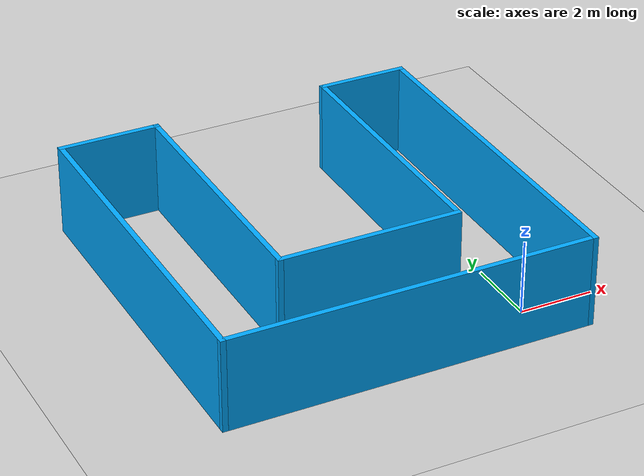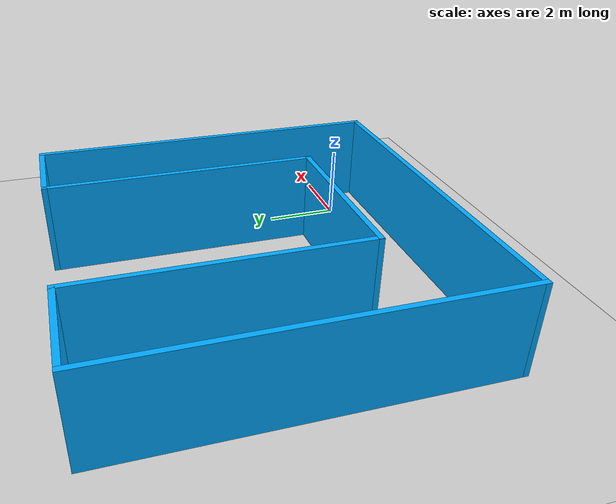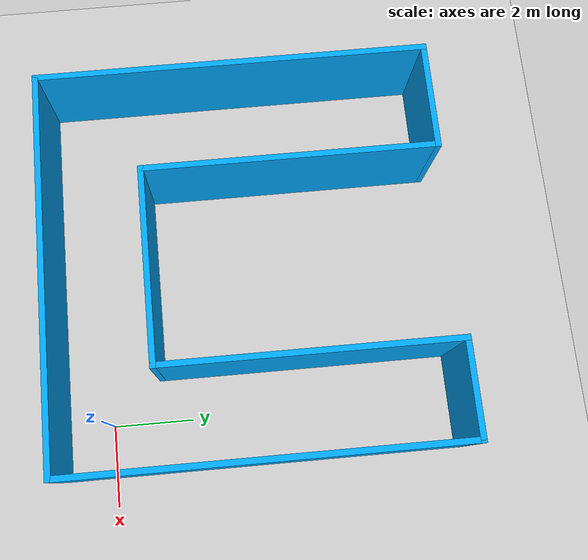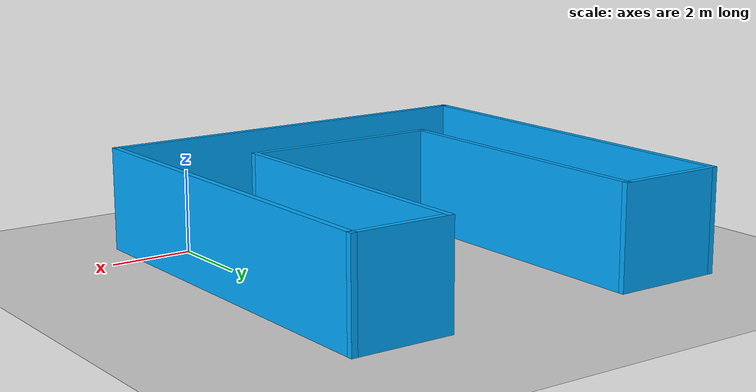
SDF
<sdf version="1.6">
 <world name="default">
  <light name="sun" type="directional">
   <pose>0 0 15 0 -0 0</pose>
   <diffuse>1 1 1 1</diffuse>
   <specular>0.1 0.1 0.1 1</specular>
   <attenuation>
    <range>1000</range>
    <constant>0.9</constant>
    <linear>0.01</linear>
    <quadratic>0.001</quadratic>
   </attenuation>
   <direction>-0.5 0.5 -1</direction>
  </light>
  <model name="ground_plane">
   <static>1</static>
   <link name="link">
    <collision name="collision">
     <geometry><plane><normal>0 0 1</normal><size>100 100</size></plane></geometry>
     <surface><friction><ode><mu>100</mu><mu2>50</mu2></ode></friction></surface>
    </collision>
    <visual name="visual">
     <transparency>1</transparency>
     <cast_shadows>0</cast_shadows>
     <geometry><plane><normal>0 0 1</normal><size>100 100</size></plane></geometry>
     <material>
      <script><uri>file://media/materials/scripts/gazebo.material</uri><name>Gazebo/Grey</name></script>
     </material>
    </visual>
   </link>
  </model>
  <gravity>0 0 -9.8</gravity>
  <magnetic_field>6e-06 2.3e-05 -4.2e-05</magnetic_field>
  <atmosphere type="adiabatic"/>
  <physics name="default_physics" default="0" type="ode">
   <max_step_size>0.001</max_step_size>
   <real_time_factor>1</real_time_factor>
   <real_time_update_rate>1000</real_time_update_rate>
  </physics>
  <scene><ambient>0.4 0.4 0.4 1</ambient><background>0.7 0.7 0.7 1</background><shadows>1</shadows></scene>
  <spherical_coordinates>
   <surface_model>EARTH_WGS84</surface_model>
   <latitude_deg>0</latitude_deg>
   <longitude_deg>0</longitude_deg>
   <elevation>0</elevation>
   <heading_deg>0</heading_deg>
  </spherical_coordinates>
  <model name="Blue_U">
   <pose>-3.71989 3.73043 0 0 -0 0</pose>
   <link name="Wall_10">
    <collision name="Wall_10_Collision">
     <geometry><box><size>10 0.15 2.5</size></box></geometry>
     <pose>0 0 1.25 0 -0 0</pose>
    </collision>
    <visual name="Wall_10_Visual">
     <pose>0 0 1.25 0 -0 0</pose>
     <geometry><box><size>10 0.15 2.5</size></box></geometry>
     <material>
      <script><uri>file://media/materials/scripts/gazebo.material</uri><name>Gazebo/Grey</name></script>
      <ambient>0 0.666667 1 1</ambient>
     </material>
    </visual>
    <pose>-4.925 0 0 0 -0 1.5708</pose>
   </link>
   <link name="Wall_12">
    <collision name="Wall_12_Collision">
     <geometry><box><size>10 0.15 2.5</size></box></geometry>
     <pose>0 0 1.25 0 -0 0</pose>
    </collision>
    <visual name="Wall_12_Visual">
     <pose>0 0 1.25 0 -0 0</pose>
     <geometry><box><size>10 0.15 2.5</size></box></geometry>
     <material>
      <script><uri>file://media/materials/scripts/gazebo.material</uri><name>Gazebo/Grey</name></script>
      <ambient>0 0.666667 1 1</ambient>
     </material>
    </visual>
    <pose>0 -4.925 0 0 -0 0</pose>
   </link>
   <link name="Wall_13">
    <collision name="Wall_13_Collision">
     <geometry><box><size>10 0.15 2.5</size></box></geometry>
     <pose>0 0 1.25 0 -0 0</pose>
    </collision>
    <visual name="Wall_13_Visual">
     <pose>0 0 1.25 0 -0 0</pose>
     <geometry><box><size>10 0.15 2.5</size></box></geometry>
     <material>
      <script><uri>file://media/materials/scripts/gazebo.material</uri><name>Gazebo/Grey</name></script>
      <ambient>0 0.666667 1 1</ambient>
     </material>
    </visual>
    <pose>4.925 0 0 0 -0 1.5708</pose>
   </link>
   <link name="Wall_14">
    <collision name="Wall_14_Collision">
     <geometry><box><size>2.5 0.15 2.5</size></box></geometry>
     <pose>0 0 1.25 0 -0 0</pose>
    </collision>
    <visual name="Wall_14_Visual">
     <pose>0 0 1.25 0 -0 0</pose>
     <geometry><box><size>2.5 0.15 2.5</size></box></geometry>
     <material>
      <script><uri>file://media/materials/scripts/gazebo.material</uri><name>Gazebo/Grey</name></script>
      <ambient>0 0.666667 1 1</ambient>
     </material>
    </visual>
    <pose>3.75 4.925 0 0 -0 3.14159</pose>
   </link>
   <link name="Wall_15">
    <collision name="Wall_15_Collision">
     <geometry><box><size>7.5 0.15 2.5</size></box></geometry>
     <pose>0 0 1.25 0 -0 0</pose>
    </collision>
    <visual name="Wall_15_Visual">
     <pose>0 0 1.25 0 -0 0</pose>
     <geometry><box><size>7.5 0.15 2.5</size></box></geometry>
     <material>
      <script><uri>file://media/materials/scripts/gazebo.material</uri><name>Gazebo/Grey</name></script>
      <ambient>0 0.666667 1 1</ambient>
     </material>
    </visual>
    <pose>2.575 1.25 0 0 0 -1.5708</pose>
   </link>
   <link name="Wall_16">
    <collision name="Wall_16_Collision">
     <geometry><box><size>5 0.15 2.5</size></box></geometry>
     <pose>0 0 1.25 0 -0 0</pose>
    </collision>
    <visual name="Wall_16_Visual">
     <pose>0 0 1.25 0 -0 0</pose>
     <geometry><box><size>5 0.15 2.5</size></box></geometry>
     <material>
      <script><uri>file://media/materials/scripts/gazebo.material</uri><name>Gazebo/Grey</name></script>
      <ambient>0 0.666667 1 1</ambient>
     </material>
    </visual>
    <pose>0.15 -2.425 0 0 -0 3.14159</pose>
   </link>
   <link name="Wall_17">
    <collision name="Wall_17_Collision">
     <geometry><box><size>7.5 0.15 2.5</size></box></geometry>
     <pose>0 0 1.25 0 -0 0</pose>
    </collision>
    <visual name="Wall_17_Visual">
     <pose>0 0 1.25 0 -0 0</pose>
     <geometry><box><size>7.5 0.15 2.5</size></box></geometry>
     <material>
      <script><uri>file://media/materials/scripts/gazebo.material</uri><name>Gazebo/Grey</name></script>
      <ambient>0 0.666667 1 1</ambient>
     </material>
    </visual>
    <pose>-2.275 1.25 0 0 -0 1.5708</pose>
   </link>
   <link name="Wall_18">
    <collision name="Wall_18_Collision">
     <geometry><box><size>2.8 0.15 2.5</size></box></geometry>
     <pose>0 0 1.25 0 -0 0</pose>
    </collision>
    <visual name="Wall_18_Visual">
     <pose>0 0 1.25 0 -0 0</pose>
     <geometry><box><size>2.8 0.15 2.5</size></box></geometry>
     <material>
      <script><uri>file://media/materials/scripts/gazebo.material</uri><name>Gazebo/Grey</name></script>
      <ambient>0 0.666667 1 1</ambient>
     </material>
    </visual>
    <pose>-3.6 4.925 0 0 0 -3.14159</pose>
   </link>
   <static>1</static>
  </model>
 </world>
</sdf>
